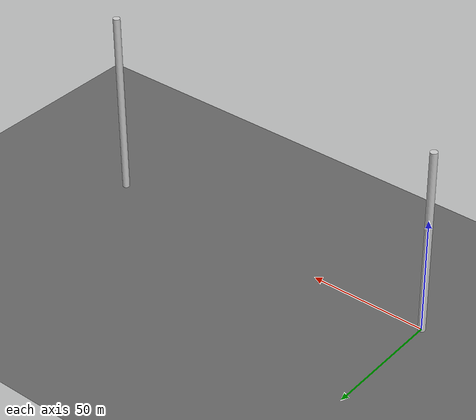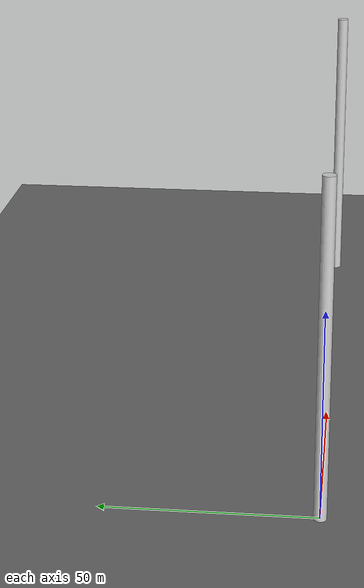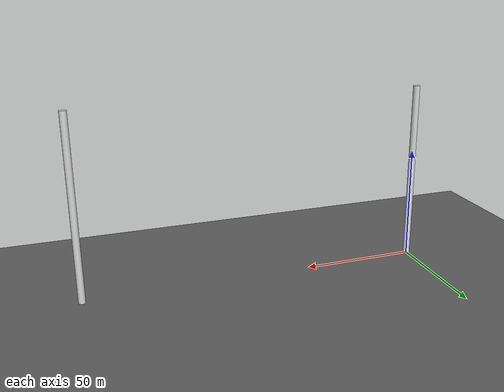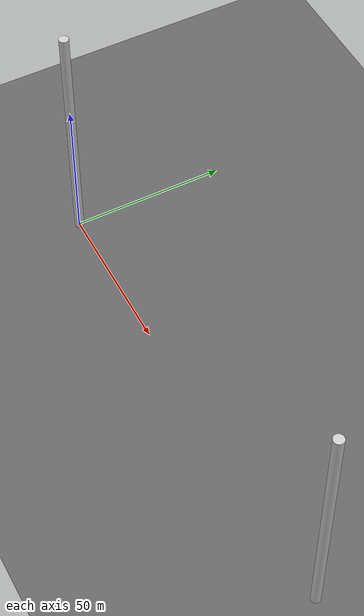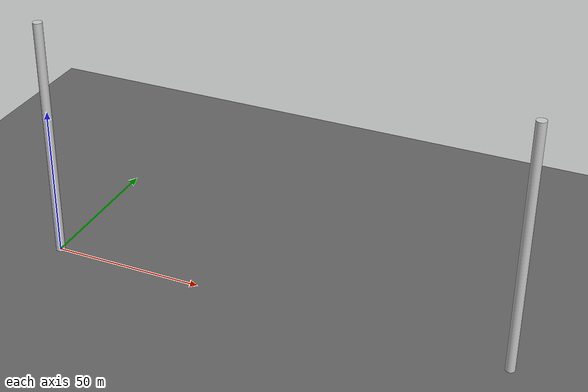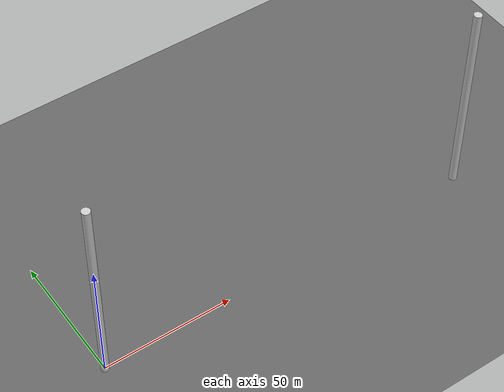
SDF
<?xml version="1.0"?>
<sdf version="1.9">
  <world name="windfarm_field">

    <physics name="1ms" type="ode">
      <max_step_size>0.001</max_step_size>
      <real_time_factor>1.0</real_time_factor>
    </physics>

    <plugin filename="gz-sim-physics-system" name="gz::sim::systems::Physics"/>
    <plugin filename="gz-sim-user-commands-system" name="gz::sim::systems::UserCommands"/>
    <plugin filename="gz-sim-sensors-system" name="gz::sim::systems::Sensors">
      <render_engine>ogre2</render_engine>
    </plugin>
    <plugin filename="gz-sim-scene-broadcaster-system" name="gz::sim::systems::SceneBroadcaster"/>
    <plugin filename="gz-sim-imu-system" name="gz::sim::systems::Imu"/>
    <plugin filename="gz-sim-navsat-system" name="gz::sim::systems::NavSat"/>

    <light name="sun" type="directional">
      <direction>-0.5 0.1 -0.9</direction>
      <diffuse>0.8 0.8 0.8 1</diffuse>
      <specular>0.2 0.2 0.2 1</specular>
    </light>

    <model name="ground_plane">
      <static>true</static>
      <link name="link">
        <collision name="collision">
          <geometry><plane><normal>0 0 1</normal></plane></geometry>
        </collision>
        <visual name="visual">
          <geometry><plane><normal>0 0 1</normal><size>500 500</size></plane></geometry>
          <material><ambient>0.4 0.4 0.4 1</ambient></material>
        </visual>
      </link>
    </model>

    <!-- WTG 1 tower at 0,0 -->
    <model name="wtg_01_tower">
      <static>true</static>
      <pose>0 0 0 0 0 0</pose>
      <link name="link">
        <collision name="col">
          <geometry><cylinder><radius>1.5</radius><length>80.0</length></cylinder></geometry>
        </collision>
        <visual name="vis">
          <geometry><cylinder><radius>1.5</radius><length>80.0</length></cylinder></geometry>
          <material><ambient>0.8 0.8 0.8 1</ambient></material>
        </visual>
        <pose>0 0 40 0 0 0</pose>
      </link>
    </model>

    <!-- WTG 2 tower at 150,0 -->
    <model name="wtg_02_tower">
      <static>true</static>
      <pose>150 0 0 0 0 0</pose>
      <link name="link">
        <collision name="col">
          <geometry><cylinder><radius>1.5</radius><length>80.0</length></cylinder></geometry>
        </collision>
        <visual name="vis">
          <geometry><cylinder><radius>1.5</radius><length>80.0</length></cylinder></geometry>
          <material><ambient>0.8 0.8 0.8 1</ambient></material>
        </visual>
        <pose>0 0 40 0 0 0</pose>
      </link>
    </model>

  </world>
</sdf>
